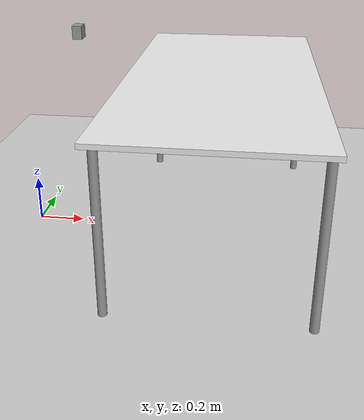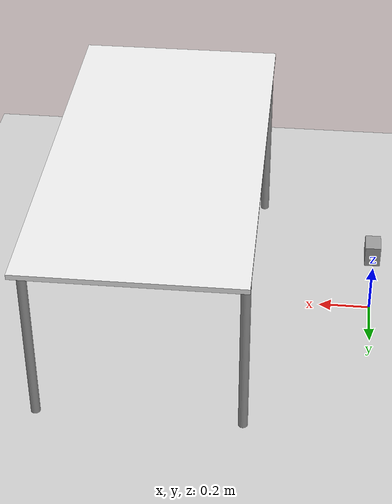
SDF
<sdf version="1.7">
 <world name="default">
  <model name="ground_plane">
   <static>1</static>
   <link name="link1">
    <collision name="collision">
     <geometry><plane><normal>0 0 1</normal><size>100 100</size></plane></geometry>
     <surface>
      <contact><collide_bitmask>65535</collide_bitmask></contact>
      <friction><ode><mu>100</mu><mu2>50</mu2></ode></friction>
     </surface>
    </collision>
    <visual name="visual">
     <cast_shadows>0</cast_shadows>
     <geometry><plane><normal>0 0 1</normal><size>100 100</size></plane></geometry>
     <material>
      <script><uri>file://media/materials/scripts/gazebo.material</uri><name>Gazebo/Grey</name></script>
     </material>
    </visual>
   </link>
  </model>
  <model name="target_box">
   <link name="link">
    <inertial>
     <mass>0.000429524</mass>
     <inertia>
      <ixx>4.25071e-07</ixx>
      <ixy>0</ixy>
      <ixz>0</ixz>
      <iyy>4.09344e-07</iyy>
      <iyz>0</iyz>
      <izz>3.93398e-07</izz>
     </inertia>
    </inertial>
    <visual name="visual">
     <geometry><box><size>0.05 0.07 0.07</size></box></geometry>
     <material>
      <lighting>1</lighting>
      <script><uri>file://media/materials/scripts/gazebo.material</uri><name>Gazebo/Grey</name></script>
      <shader type="pixel"/>
     </material>
    </visual>
    <collision name="collision">
     <geometry><box><size>0.072634 0.075598 0.078489</size></box></geometry>
     <surface>
      <friction>
       <ode><mu>1</mu><mu2>1</mu2><fdir1>0 0 0</fdir1><slip1>0</slip1><slip2>0</slip2></ode>
       <torsional>
        <coefficient>1</coefficient>
        <patch_radius>0</patch_radius>
        <surface_radius>0</surface_radius>
        <use_patch_radius>1</use_patch_radius>
        <ode><slip>0</slip></ode>
       </torsional>
      </friction>
      <bounce><restitution_coefficient>0</restitution_coefficient><threshold>1e+06</threshold></bounce>
      <contact>
       <collide_without_contact>0</collide_without_contact>
       <collide_without_contact_bitmask>1</collide_without_contact_bitmask>
       <collide_bitmask>1</collide_bitmask>
       <ode>
        <soft_cfm>0</soft_cfm>
        <soft_erp>0.2</soft_erp>
        <kp>1e+13</kp>
        <kd>1</kd>
        <max_vel>0.01</max_vel>
        <min_depth>0</min_depth>
       </ode>
       <bullet>
        <split_impulse>1</split_impulse>
        <split_impulse_penetration_threshold>-0.01</split_impulse_penetration_threshold>
        <soft_cfm>0</soft_cfm>
        <soft_erp>0.2</soft_erp>
        <kp>1e+13</kp>
        <kd>1</kd>
       </bullet>
      </contact>
     </surface>
    </collision>
   </link>
   <static>0</static>
   <pose>0.05247 0.618629 0.759097 4e-06 4.7e-05 -9e-06</pose>
  </model>
  <model name="table2_2">
   <link name="link2">
    <inertial>
     <inertia><ixx>0</ixx><ixy>0</ixy><ixz>0</ixz><iyy>0</iyy><iyz>0</iyz><izz>0</izz></inertia>
     <mass>0</mass>
    </inertial>
    <pose>0.011874 -0.057526 0 0 -0 0</pose>
    <visual name="back_left_leg">
     <pose>-0.68 0.38 0.35 0 -0 0</pose>
     <geometry><cylinder><radius>0.017374</radius><length>0.7</length></cylinder></geometry>
     <material>
      <script><uri>file://media/materials/scripts/gazebo.material</uri><name>Gazebo/Grey</name></script>
      <shader type="pixel"><normal_map>__default__</normal_map></shader>
      <ambient>0.3 0.3 0.3 1</ambient>
      <diffuse>0.7 0.7 0.7 1</diffuse>
      <specular>0.01 0.01 0.01 1</specular>
      <emissive>0 0 0 1</emissive>
     </material>
    </visual>
    <visual name="visual1">
     <pose>0 0 0.71 0 -0 0</pose>
     <geometry><box><size>1.58 0.8 0.019708</size></box></geometry>
     <material>
      <script><uri>file://media/materials/scripts/gazebo.material</uri><name>Gazebo/White</name></script>
      <shader type="pixel"><normal_map>__default__</normal_map></shader>
      <ambient>0.9 0.9 0.9 1</ambient>
      <diffuse>1 1 1 1</diffuse>
      <specular>0.2 0.2 0.2 1</specular>
      <emissive>0 0 0 1</emissive>
     </material>
    </visual>
    <visual name="front_left_leg">
     <pose>0.68 0.38 0.35 0 -0 0</pose>
     <geometry><cylinder><radius>0.017374</radius><length>0.7</length></cylinder></geometry>
     <material>
      <script><uri>file://media/materials/scripts/gazebo.material</uri><name>Gazebo/Grey</name></script>
      <shader type="pixel"><normal_map>__default__</normal_map></shader>
      <ambient>0.3 0.3 0.3 1</ambient>
      <diffuse>0.7 0.7 0.7 1</diffuse>
      <specular>0.01 0.01 0.01 1</specular>
      <emissive>0 0 0 1</emissive>
     </material>
    </visual>
    <visual name="back_right_leg">
     <pose>-0.68 -0.38 0.35 0 -0 0</pose>
     <geometry><cylinder><radius>0.017374</radius><length>0.7</length></cylinder></geometry>
     <material>
      <script><uri>file://media/materials/scripts/gazebo.material</uri><name>Gazebo/Grey</name></script>
      <shader type="pixel"><normal_map>__default__</normal_map></shader>
      <ambient>0.3 0.3 0.3 1</ambient>
      <diffuse>0.7 0.7 0.7 1</diffuse>
      <specular>0.01 0.01 0.01 1</specular>
      <emissive>0 0 0 1</emissive>
     </material>
    </visual>
    <visual name="front_right_leg">
     <pose>0.68 -0.38 0.35 0 -0 0</pose>
     <geometry><cylinder><radius>0.017374</radius><length>0.7</length></cylinder></geometry>
     <material>
      <script><uri>file://media/materials/scripts/gazebo.material</uri><name>Gazebo/Grey</name></script>
      <shader type="pixel"><normal_map>__default__</normal_map></shader>
      <ambient>0.3 0.3 0.3 1</ambient>
      <diffuse>0.7 0.7 0.7 1</diffuse>
      <specular>0.01 0.01 0.01 1</specular>
      <emissive>0 0 0 1</emissive>
     </material>
    </visual>
    <collision name="front_right_leg">
     <pose>0.68 -0.38 0.35 0 -0 0</pose>
     <geometry><cylinder><radius>0.017374</radius><length>0.7</length></cylinder></geometry>
     <surface>
      <friction>
       <ode><mu>1</mu><mu2>1</mu2><fdir1>0 0 0</fdir1><slip1>0</slip1><slip2>0</slip2></ode>
       <torsional>
        <coefficient>1</coefficient>
        <patch_radius>0</patch_radius>
        <surface_radius>0</surface_radius>
        <use_patch_radius>1</use_patch_radius>
        <ode><slip>0</slip></ode>
       </torsional>
      </friction>
      <bounce><restitution_coefficient>0</restitution_coefficient><threshold>1e+06</threshold></bounce>
      <contact>
       <collide_without_contact>0</collide_without_contact>
       <collide_without_contact_bitmask>1</collide_without_contact_bitmask>
       <collide_bitmask>1</collide_bitmask>
       <ode>
        <soft_cfm>0</soft_cfm>
        <soft_erp>0.2</soft_erp>
        <kp>1e+13</kp>
        <kd>1</kd>
        <max_vel>0.01</max_vel>
        <min_depth>0</min_depth>
       </ode>
       <bullet>
        <split_impulse>1</split_impulse>
        <split_impulse_penetration_threshold>-0.01</split_impulse_penetration_threshold>
        <soft_cfm>0</soft_cfm>
        <soft_erp>0.2</soft_erp>
        <kp>1e+13</kp>
        <kd>1</kd>
       </bullet>
      </contact>
     </surface>
    </collision>
    <collision name="surface">
     <pose>0 0 0.71 0 -0 0</pose>
     <geometry><box><size>1.58 0.8 0.019708</size></box></geometry>
     <surface>
      <friction>
       <ode><mu>0.6</mu><mu2>0.6</mu2><fdir1>0 0 0</fdir1><slip1>0</slip1><slip2>0</slip2></ode>
       <torsional>
        <coefficient>1</coefficient>
        <patch_radius>0</patch_radius>
        <surface_radius>0</surface_radius>
        <use_patch_radius>1</use_patch_radius>
        <ode><slip>0</slip></ode>
       </torsional>
      </friction>
      <bounce><restitution_coefficient>0</restitution_coefficient><threshold>1e+06</threshold></bounce>
      <contact>
       <collide_without_contact>0</collide_without_contact>
       <collide_without_contact_bitmask>1</collide_without_contact_bitmask>
       <collide_bitmask>1</collide_bitmask>
       <ode>
        <soft_cfm>0</soft_cfm>
        <soft_erp>0.2</soft_erp>
        <kp>1e+13</kp>
        <kd>1</kd>
        <max_vel>0.01</max_vel>
        <min_depth>0</min_depth>
       </ode>
       <bullet>
        <split_impulse>1</split_impulse>
        <split_impulse_penetration_threshold>-0.01</split_impulse_penetration_threshold>
        <soft_cfm>0</soft_cfm>
        <soft_erp>0.2</soft_erp>
        <kp>1e+13</kp>
        <kd>1</kd>
       </bullet>
      </contact>
     </surface>
    </collision>
    <collision name="front_left_leg">
     <pose>0.68 0.38 0.35 0 -0 0</pose>
     <geometry><cylinder><radius>0.017374</radius><length>0.7</length></cylinder></geometry>
     <surface>
      <friction>
       <ode><mu>1</mu><mu2>1</mu2><fdir1>0 0 0</fdir1><slip1>0</slip1><slip2>0</slip2></ode>
       <torsional>
        <coefficient>1</coefficient>
        <patch_radius>0</patch_radius>
        <surface_radius>0</surface_radius>
        <use_patch_radius>1</use_patch_radius>
        <ode><slip>0</slip></ode>
       </torsional>
      </friction>
      <bounce><restitution_coefficient>0</restitution_coefficient><threshold>1e+06</threshold></bounce>
      <contact>
       <collide_without_contact>0</collide_without_contact>
       <collide_without_contact_bitmask>1</collide_without_contact_bitmask>
       <collide_bitmask>1</collide_bitmask>
       <ode>
        <soft_cfm>0</soft_cfm>
        <soft_erp>0.2</soft_erp>
        <kp>1e+13</kp>
        <kd>1</kd>
        <max_vel>0.01</max_vel>
        <min_depth>0</min_depth>
       </ode>
       <bullet>
        <split_impulse>1</split_impulse>
        <split_impulse_penetration_threshold>-0.01</split_impulse_penetration_threshold>
        <soft_cfm>0</soft_cfm>
        <soft_erp>0.2</soft_erp>
        <kp>1e+13</kp>
        <kd>1</kd>
       </bullet>
      </contact>
     </surface>
    </collision>
    <collision name="back_left_leg">
     <pose>-0.68 0.38 0.35 0 -0 0</pose>
     <geometry><cylinder><radius>0.017374</radius><length>0.7</length></cylinder></geometry>
     <surface>
      <friction>
       <ode><mu>1</mu><mu2>1</mu2><fdir1>0 0 0</fdir1><slip1>0</slip1><slip2>0</slip2></ode>
       <torsional>
        <coefficient>1</coefficient>
        <patch_radius>0</patch_radius>
        <surface_radius>0</surface_radius>
        <use_patch_radius>1</use_patch_radius>
        <ode><slip>0</slip></ode>
       </torsional>
      </friction>
      <bounce><restitution_coefficient>0</restitution_coefficient><threshold>1e+06</threshold></bounce>
      <contact>
       <collide_without_contact>0</collide_without_contact>
       <collide_without_contact_bitmask>1</collide_without_contact_bitmask>
       <collide_bitmask>1</collide_bitmask>
       <ode>
        <soft_cfm>0</soft_cfm>
        <soft_erp>0.2</soft_erp>
        <kp>1e+13</kp>
        <kd>1</kd>
        <max_vel>0.01</max_vel>
        <min_depth>0</min_depth>
       </ode>
       <bullet>
        <split_impulse>1</split_impulse>
        <split_impulse_penetration_threshold>-0.01</split_impulse_penetration_threshold>
        <soft_cfm>0</soft_cfm>
        <soft_erp>0.2</soft_erp>
        <kp>1e+13</kp>
        <kd>1</kd>
       </bullet>
      </contact>
     </surface>
    </collision>
    <collision name="back_right_leg">
     <pose>-0.68 -0.38 0.35 0 -0 0</pose>
     <geometry><cylinder><radius>0.017374</radius><length>0.7</length></cylinder></geometry>
     <surface>
      <friction>
       <ode><mu>1</mu><mu2>1</mu2><fdir1>0 0 0</fdir1><slip1>0</slip1><slip2>0</slip2></ode>
       <torsional>
        <coefficient>1</coefficient>
        <patch_radius>0</patch_radius>
        <surface_radius>0</surface_radius>
        <use_patch_radius>1</use_patch_radius>
        <ode><slip>0</slip></ode>
       </torsional>
      </friction>
      <bounce><restitution_coefficient>0</restitution_coefficient><threshold>1e+06</threshold></bounce>
      <contact>
       <collide_without_contact>0</collide_without_contact>
       <collide_without_contact_bitmask>1</collide_without_contact_bitmask>
       <collide_bitmask>1</collide_bitmask>
       <ode>
        <soft_cfm>0</soft_cfm>
        <soft_erp>0.2</soft_erp>
        <kp>1e+13</kp>
        <kd>1</kd>
        <max_vel>0.01</max_vel>
        <min_depth>0</min_depth>
       </ode>
       <bullet>
        <split_impulse>1</split_impulse>
        <split_impulse_penetration_threshold>-0.01</split_impulse_penetration_threshold>
        <soft_cfm>0</soft_cfm>
        <soft_erp>0.2</soft_erp>
        <kp>1e+13</kp>
        <kd>1</kd>
       </bullet>
      </contact>
     </surface>
    </collision>
   </link>
   <static>1</static>
   <pose>0.781635 0.009056 0 0 -0 1.5706</pose>
  </model>
 </world>
</sdf>
